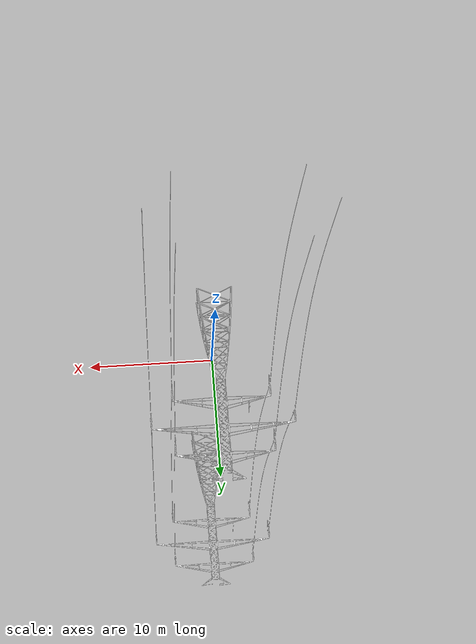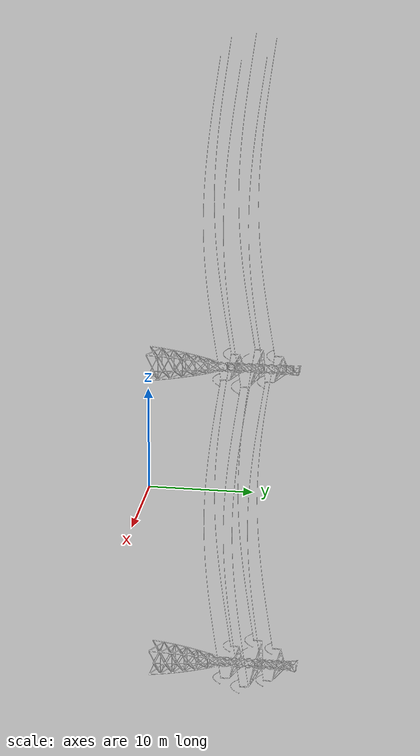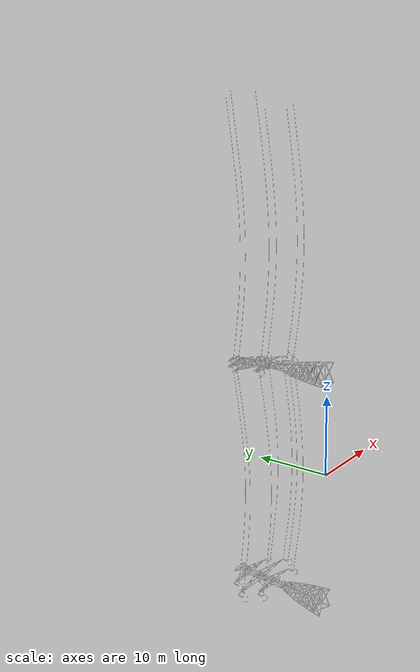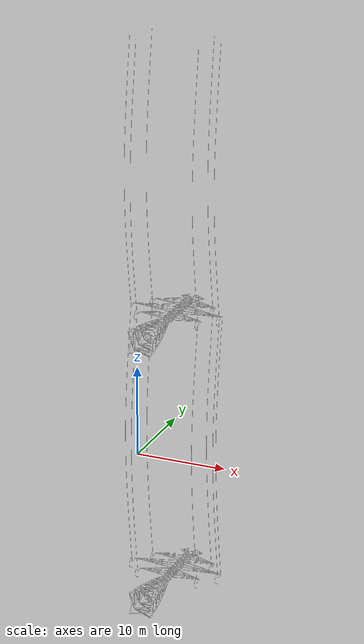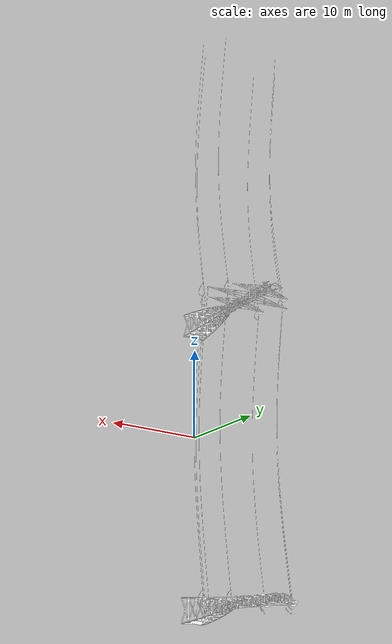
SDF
<?xml version="1.0"?>
<sdf version="1.9">
  <model name="transmission_tower">
    <static>true</static>
    <link name="link">
      <visual name="visual">
        <geometry>
          <mesh>
            <uri>meshes/tower_model_3.dae</uri>
          </mesh>
        </geometry>
      </visual>

      <!-- ===== Tower A (mesh Z ~ -18): central mast + wide cross-arm band ===== -->
      <collision name="mastA"><pose>0.2 3 -18 0 0 0</pose>
        <geometry><box><size>2.6 6 3</size></box></geometry></collision>
      <collision name="armsA"><pose>0.2 10 -17 0 0 0</pose>
        <geometry><box><size>10.5 9 4</size></box></geometry></collision>

      <!-- ===== Tower B (mesh Z ~ +12.7): same two boxes ===== -->
      <collision name="mastB"><pose>0.2 3 12.7 0 0 0</pose>
        <geometry><box><size>2.6 6 3</size></box></geometry></collision>
      <collision name="armsB"><pose>0.2 10 12.7 0 0 0</pose>
        <geometry><box><size>10.5 9 6</size></box></geometry></collision>

      <!-- ===== Conductors: 6 cylinders spanning the two towers (axis = local Z) ===== -->
      <collision name="wire_L_low"><pose>-3.5 6 -2.5 0 0 0</pose>
        <geometry><cylinder><radius>0.15</radius><length>31</length></cylinder></geometry></collision>
      <collision name="wire_R_low"><pose>3.5 6 -2.5 0 0 0</pose>
        <geometry><cylinder><radius>0.15</radius><length>31</length></cylinder></geometry></collision>
      <collision name="wire_L_out"><pose>-5 8.5 -2.5 0 0 0</pose>
        <geometry><cylinder><radius>0.15</radius><length>31</length></cylinder></geometry></collision>
      <collision name="wire_R_out"><pose>5 8.5 -2.5 0 0 0</pose>
        <geometry><cylinder><radius>0.15</radius><length>31</length></cylinder></geometry></collision>
      <collision name="wire_L_up"><pose>-3.5 10.5 -2.5 0 0 0</pose>
        <geometry><cylinder><radius>0.15</radius><length>31</length></cylinder></geometry></collision>
      <collision name="wire_R_up"><pose>3.5 10.5 -2.5 0 0 0</pose>
        <geometry><cylinder><radius>0.15</radius><length>31</length></cylinder></geometry></collision>
    </link>
  </model>
</sdf>
